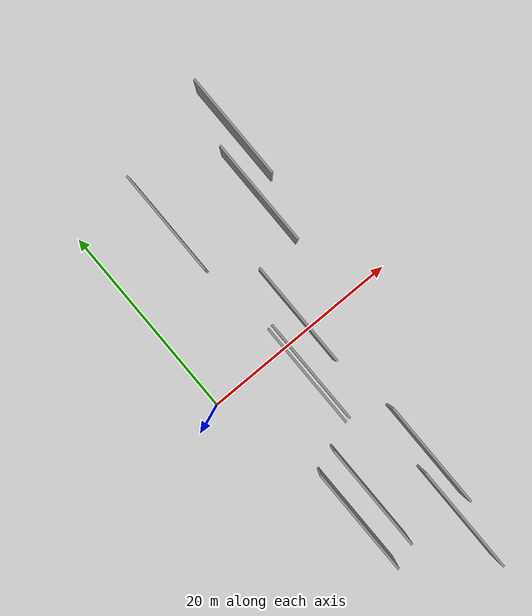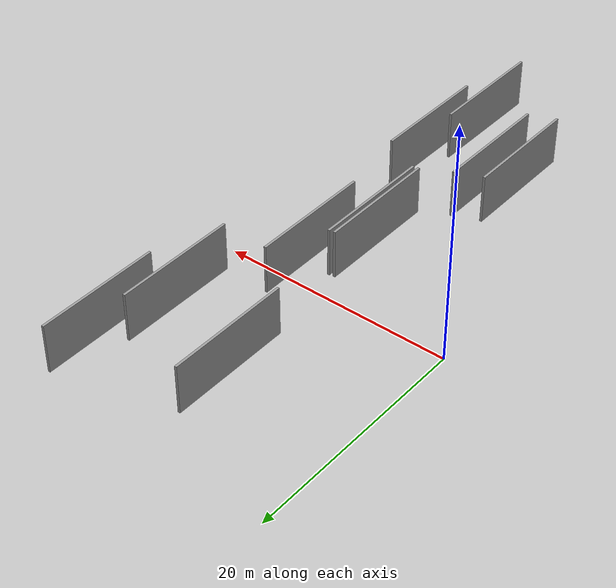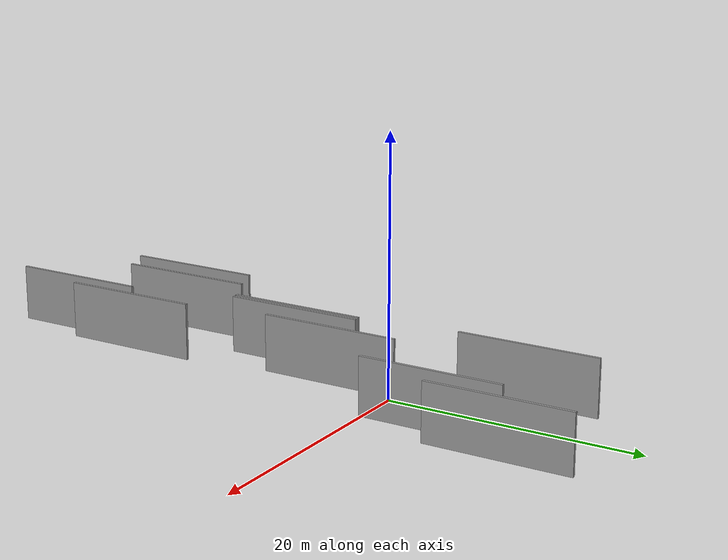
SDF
<sdf version="1.6">
 <world name="default">
  <scene>
   <sky><clouds><speed>12</speed></clouds></sky>
   <ambient>0.4 0.4 0.4 1</ambient>
   <background>0.7 0.7 0.7 1</background>
   <shadows>1</shadows>
  </scene>
  <gravity>0 0 -9.8066</gravity>
  <magnetic_field>6e-06 2.3e-05 -4.2e-05</magnetic_field>
  <physics default="0" name="default_physics" type="ode">
   <ode>
    <solver>
     <type>quick</type>
     <iters>10</iters>
     <sor>1.0</sor>
     <use_dynamic_moi_rescaling>0</use_dynamic_moi_rescaling>
    </solver>
    <constraints>
     <cfm>0</cfm>
     <erp>0.2</erp>
     <contact_max_correcting_vel>100</contact_max_correcting_vel>
     <contact_surface_layer>0.001</contact_surface_layer>
    </constraints>
   </ode>
   <max_step_size>0.004</max_step_size>
   <real_time_factor>1</real_time_factor>
   <real_time_update_rate>250</real_time_update_rate>
  </physics>
  <light name="sun" type="directional">
   <pose>0 0 10 0 0 0</pose>
   <diffuse>0.8 0.8 0.8 1</diffuse>
   <specular>0.2 0.2 0.2 1</specular>
   <attenuation>
    <range>1000</range>
    <constant>0.9</constant>
    <linear>0.01</linear>
    <quadratic>0.001</quadratic>
   </attenuation>
   <direction>-0.5 0.1 -0.9</direction>
  </light>
  <model name="grey_wall_1">
   <static>1</static>
   <pose>5.8885 -13.7213 5.0 0.000000 0.000000 1.570796</pose>
   <link name="link">
    <pose>0 0 2.00 0 0 0</pose>
    <collision name="collision"><geometry><box><size>10.00 0.2 4.00</size></box></geometry></collision>
    <visual name="visual">
     <cast_shadows>0</cast_shadows>
     <geometry><box><size>10.00 0.2 4.00</size></box></geometry>
     <material>
      <script>
       <uri>model://grey_wall/materials/scripts</uri>
       <uri>model://grey_wall/materials/textures</uri>
       <name>vrc/grey_wall</name>
      </script>
     </material>
    </visual>
   </link>
  </model>
  <model name="grey_wall_2">
   <static>1</static>
   <pose>8.6314 -2.4970 5.0 0.000000 0.000000 1.570796</pose>
   <link name="link">
    <pose>0 0 2.00 0 0 0</pose>
    <collision name="collision"><geometry><box><size>10.00 0.2 4.00</size></box></geometry></collision>
    <visual name="visual">
     <cast_shadows>0</cast_shadows>
     <geometry><box><size>10.00 0.2 4.00</size></box></geometry>
     <material>
      <script>
       <uri>model://grey_wall/materials/scripts</uri>
       <uri>model://grey_wall/materials/textures</uri>
       <name>vrc/grey_wall</name>
      </script>
     </material>
    </visual>
   </link>
  </model>
  <model name="grey_wall_3">
   <static>1</static>
   <pose>16.6509 17.0698 5.0 0.000000 0.000000 1.570796</pose>
   <link name="link">
    <pose>0 0 2.00 0 0 0</pose>
    <collision name="collision"><geometry><box><size>10.00 0.2 4.00</size></box></geometry></collision>
    <visual name="visual">
     <cast_shadows>0</cast_shadows>
     <geometry><box><size>10.00 0.2 4.00</size></box></geometry>
     <material>
      <script>
       <uri>model://grey_wall/materials/scripts</uri>
       <uri>model://grey_wall/materials/textures</uri>
       <name>vrc/grey_wall</name>
      </script>
     </material>
    </visual>
   </link>
  </model>
  <model name="grey_wall_4">
   <static>1</static>
   <pose>7.3129 14.5033 5.0 0.000000 0.000000 1.570796</pose>
   <link name="link">
    <pose>0 0 2.00 0 0 0</pose>
    <collision name="collision"><geometry><box><size>10.00 0.2 4.00</size></box></geometry></collision>
    <visual name="visual">
     <cast_shadows>0</cast_shadows>
     <geometry><box><size>10.00 0.2 4.00</size></box></geometry>
     <material>
      <script>
       <uri>model://grey_wall/materials/scripts</uri>
       <uri>model://grey_wall/materials/textures</uri>
       <name>vrc/grey_wall</name>
      </script>
     </material>
    </visual>
   </link>
  </model>
  <model name="grey_wall_5">
   <static>1</static>
   <pose>10.8432 1.7665 5.0 0.000000 0.000000 1.570796</pose>
   <link name="link">
    <pose>0 0 2.00 0 0 0</pose>
    <collision name="collision"><geometry><box><size>10.00 0.2 4.00</size></box></geometry></collision>
    <visual name="visual">
     <cast_shadows>0</cast_shadows>
     <geometry><box><size>10.00 0.2 4.00</size></box></geometry>
     <material>
      <script>
       <uri>model://grey_wall/materials/scripts</uri>
       <uri>model://grey_wall/materials/textures</uri>
       <name>vrc/grey_wall</name>
      </script>
     </material>
    </visual>
   </link>
  </model>
  <model name="grey_wall_6">
   <static>1</static>
   <pose>14.7919 11.5188 5.0 0.000000 0.000000 1.570796</pose>
   <link name="link">
    <pose>0 0 2.00 0 0 0</pose>
    <collision name="collision"><geometry><box><size>10.00 0.2 4.00</size></box></geometry></collision>
    <visual name="visual">
     <cast_shadows>0</cast_shadows>
     <geometry><box><size>10.00 0.2 4.00</size></box></geometry>
     <material>
      <script>
       <uri>model://grey_wall/materials/scripts</uri>
       <uri>model://grey_wall/materials/textures</uri>
       <name>vrc/grey_wall</name>
      </script>
     </material>
    </visual>
   </link>
  </model>
  <model name="grey_wall_7">
   <static>1</static>
   <pose>10.5092 -19.9268 5.0 0.000000 0.000000 1.570796</pose>
   <link name="link">
    <pose>0 0 2.00 0 0 0</pose>
    <collision name="collision"><geometry><box><size>10.00 0.2 4.00</size></box></geometry></collision>
    <visual name="visual">
     <cast_shadows>0</cast_shadows>
     <geometry><box><size>10.00 0.2 4.00</size></box></geometry>
     <material>
      <script>
       <uri>model://grey_wall/materials/scripts</uri>
       <uri>model://grey_wall/materials/textures</uri>
       <name>vrc/grey_wall</name>
      </script>
     </material>
    </visual>
   </link>
  </model>
  <model name="grey_wall_8">
   <static>1</static>
   <pose>8.1821 -2.5552 5.0 0.000000 0.000000 1.570796</pose>
   <link name="link">
    <pose>0 0 2.00 0 0 0</pose>
    <collision name="collision"><geometry><box><size>10.00 0.2 4.00</size></box></geometry></collision>
    <visual name="visual">
     <cast_shadows>0</cast_shadows>
     <geometry><box><size>10.00 0.2 4.00</size></box></geometry>
     <material>
      <script>
       <uri>model://grey_wall/materials/scripts</uri>
       <uri>model://grey_wall/materials/textures</uri>
       <name>vrc/grey_wall</name>
      </script>
     </material>
    </visual>
   </link>
  </model>
  <model name="grey_wall_9">
   <static>1</static>
   <pose>11.8648 -14.1289 5.0 0.000000 0.000000 1.570796</pose>
   <link name="link">
    <pose>0 0 2.00 0 0 0</pose>
    <collision name="collision"><geometry><box><size>10.00 0.2 4.00</size></box></geometry></collision>
    <visual name="visual">
     <cast_shadows>0</cast_shadows>
     <geometry><box><size>10.00 0.2 4.00</size></box></geometry>
     <material>
      <script>
       <uri>model://grey_wall/materials/scripts</uri>
       <uri>model://grey_wall/materials/textures</uri>
       <name>vrc/grey_wall</name>
      </script>
     </material>
    </visual>
   </link>
  </model>
  <model name="grey_wall_10">
   <static>1</static>
   <pose>3.7557 -14.5606 5.0 0.000000 0.000000 1.570796</pose>
   <link name="link">
    <pose>0 0 2.00 0 0 0</pose>
    <collision name="collision"><geometry><box><size>10.00 0.2 4.00</size></box></geometry></collision>
    <visual name="visual">
     <cast_shadows>0</cast_shadows>
     <geometry><box><size>10.00 0.2 4.00</size></box></geometry>
     <material>
      <script>
       <uri>model://grey_wall/materials/scripts</uri>
       <uri>model://grey_wall/materials/textures</uri>
       <name>vrc/grey_wall</name>
      </script>
     </material>
    </visual>
   </link>
  </model>
 </world>
</sdf>
